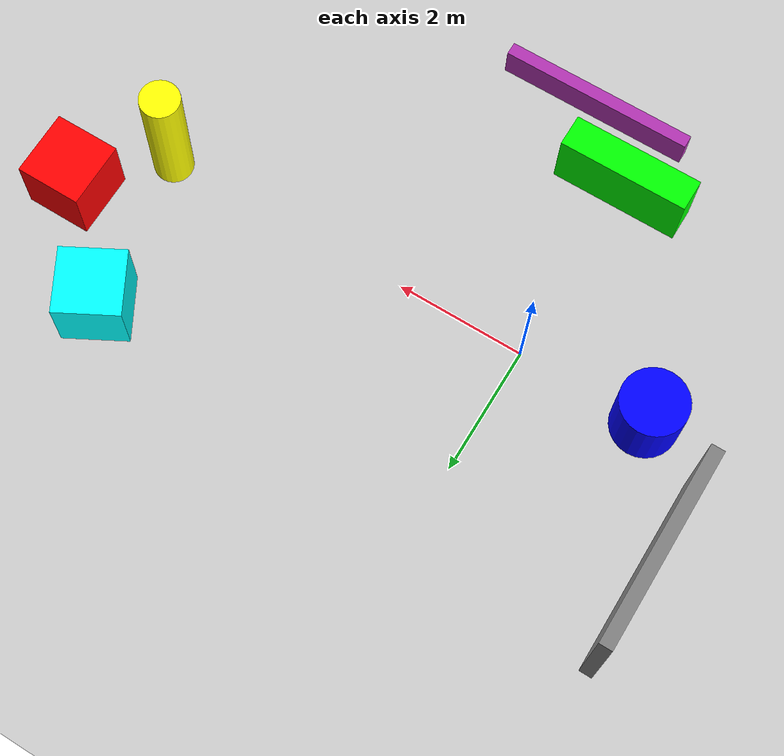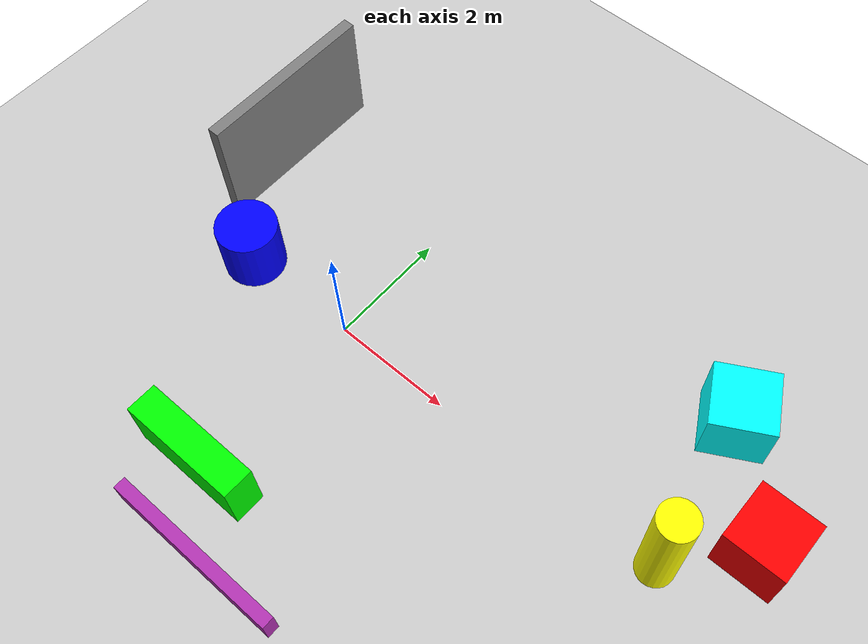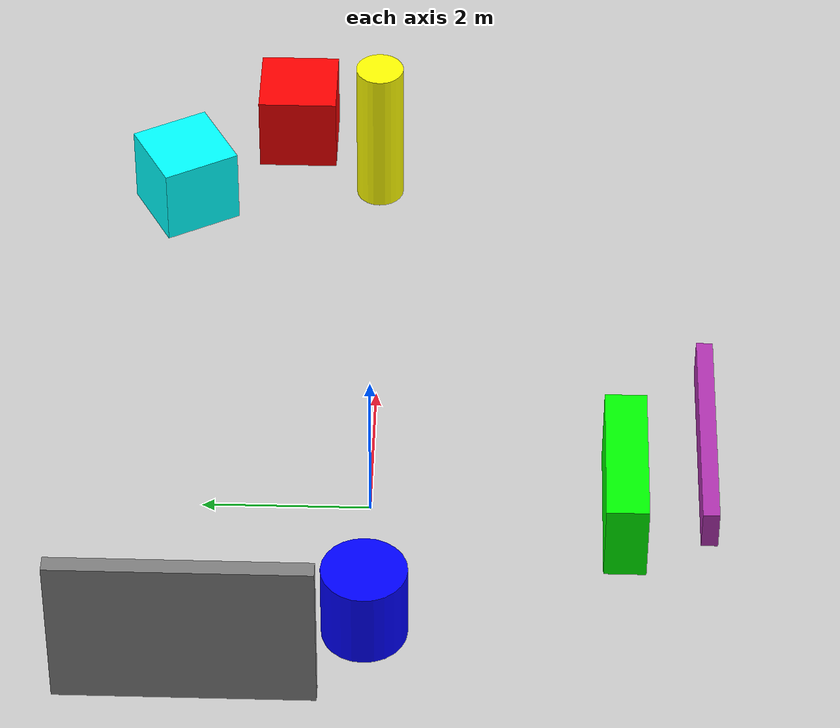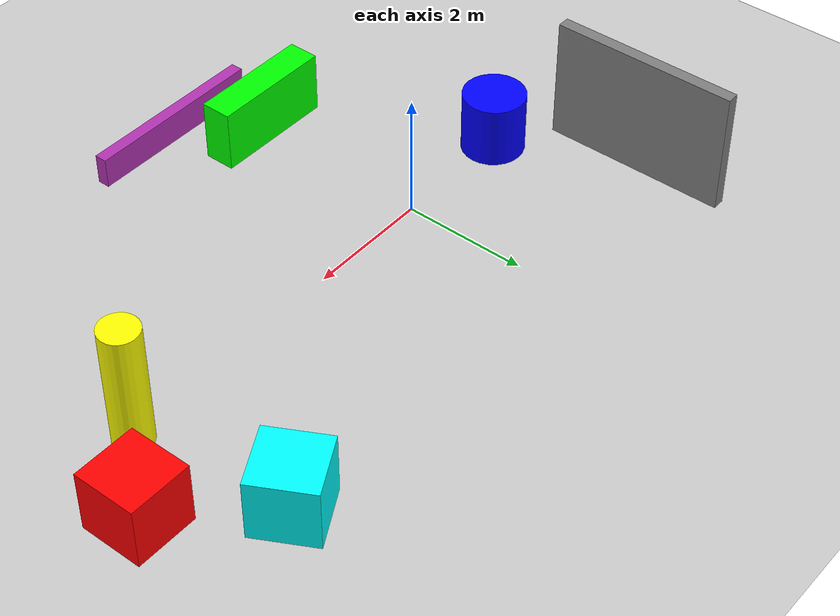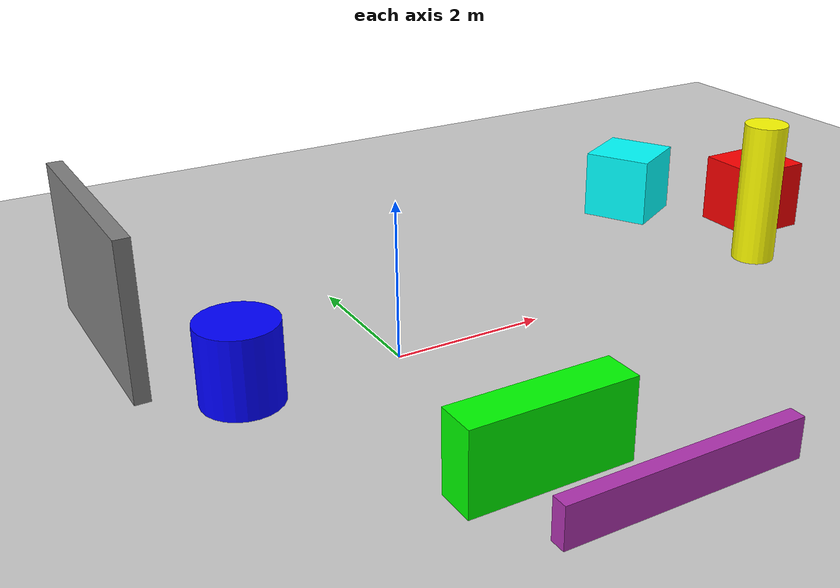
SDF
<sdf version="1.7">
 <world name="empty_world_with_obstacles">
  <light name="sun" type="directional">
   <pose>0 0 10 0 -0 0</pose>
   <diffuse>0.8 0.8 0.8 1</diffuse>
   <specular>0.2 0.2 0.2 1</specular>
   <attenuation>
    <range>1000</range>
    <constant>0.9</constant>
    <linear>0.01</linear>
    <quadratic>0.001</quadratic>
   </attenuation>
   <direction>-0.5 0.1 -0.9</direction>
   <spot><inner_angle>0</inner_angle><outer_angle>0</outer_angle><falloff>0</falloff></spot>
  </light>
  <model name="ground_plane">
   <static>1</static>
   <link name="link">
    <collision name="collision">
     <geometry><plane><normal>0 0 1</normal><size>100 100</size></plane></geometry>
     <surface>
      <contact><collide_bitmask>65535</collide_bitmask></contact>
      <friction><ode><mu>100</mu><mu2>50</mu2></ode></friction>
     </surface>
    </collision>
    <visual name="visual">
     <cast_shadows>0</cast_shadows>
     <geometry><plane><normal>0 0 1</normal><size>100 100</size></plane></geometry>
     <material>
      <script><uri>file://media/materials/scripts/gazebo.material</uri><name>Gazebo/Grey</name></script>
     </material>
    </visual>
   </link>
  </model>
  <model name="box_obstacle_1">
   <pose>4.88379 -0.81871 0 0 -0 0</pose>
   <static>1</static>
   <link name="link">
    <pose>2 2 0.5 0 -0 0</pose>
    <collision name="collision"><geometry><box><size>1 1 1</size></box></geometry></collision>
    <visual name="visual">
     <geometry><box><size>1 1 1</size></box></geometry>
     <material><ambient>1 0 0 1</ambient><diffuse>1 0 0 1</diffuse></material>
    </visual>
   </link>
  </model>
  <model name="cylinder_obstacle_1">
   <static>1</static>
   <link name="link">
    <pose>-2 0 0.5 0 -0 0</pose>
    <collision name="collision">
     <geometry><cylinder><radius>0.5</radius><length>1</length></cylinder></geometry>
    </collision>
    <visual name="visual">
     <geometry><cylinder><radius>0.5</radius><length>1</length></cylinder></geometry>
     <material><ambient>0 0 1 1</ambient><diffuse>0 0 1 1</diffuse></material>
    </visual>
   </link>
  </model>
  <model name="box_obstacle_2">
   <static>1</static>
   <link name="link">
    <pose>0 -3 0.5 0 -0 0</pose>
    <collision name="collision"><geometry><box><size>2 0.5 1</size></box></geometry></collision>
    <visual name="visual">
     <geometry><box><size>2 0.5 1</size></box></geometry>
     <material><ambient>0 1 0 1</ambient><diffuse>0 1 0 1</diffuse></material>
    </visual>
   </link>
  </model>
  <model name="cylinder_obstacle_2">
   <pose>1.90131 0.087773 0 0 -0 0</pose>
   <static>1</static>
   <link name="link">
    <pose>4 0 1 0 -0 0</pose>
    <collision name="collision">
     <geometry><cylinder><radius>0.3</radius><length>2</length></cylinder></geometry>
    </collision>
    <visual name="visual">
     <geometry><cylinder><radius>0.3</radius><length>2</length></cylinder></geometry>
     <material><ambient>1 1 0 1</ambient><diffuse>1 1 0 1</diffuse></material>
    </visual>
   </link>
  </model>
  <model name="wall_box_obstacle">
   <static>1</static>
   <link name="link">
    <pose>-3 2 1 0 -0 0</pose>
    <collision name="collision"><geometry><box><size>0.2 3 2</size></box></geometry></collision>
    <visual name="visual">
     <geometry><box><size>0.2 3 2</size></box></geometry>
     <material><ambient>0.5 0.5 0.5 1</ambient><diffuse>0.5 0.5 0.5 1</diffuse></material>
    </visual>
   </link>
  </model>
  <model name="horizontal_barrier">
   <static>1</static>
   <link name="link">
    <pose>1 -4 0.25 0 -0 0</pose>
    <collision name="collision"><geometry><box><size>3 0.2 0.5</size></box></geometry></collision>
    <visual name="visual">
     <geometry><box><size>3 0.2 0.5</size></box></geometry>
     <material><ambient>0.7 0.2 0.7 1</ambient><diffuse>0.7 0.2 0.7 1</diffuse></material>
    </visual>
   </link>
  </model>
  <model name="tilted_box_obstacle">
   <pose>2.53539 4.56874 0 0 -0 0</pose>
   <static>1</static>
   <link name="link">
    <pose>3 -2 0.5 0 -0 0.5</pose>
    <collision name="collision"><geometry><box><size>1 1 1</size></box></geometry></collision>
    <visual name="visual">
     <geometry><box><size>1 1 1</size></box></geometry>
     <material><ambient>0 1 1 1</ambient><diffuse>0 1 1 1</diffuse></material>
    </visual>
   </link>
  </model>
  <gravity>0 0 -9.8</gravity>
  <magnetic_field>6e-06 2.3e-05 -4.2e-05</magnetic_field>
  <atmosphere type="adiabatic"/>
  <physics type="ode">
   <max_step_size>0.001</max_step_size>
   <real_time_factor>1</real_time_factor>
   <real_time_update_rate>1000</real_time_update_rate>
  </physics>
  <scene><ambient>0.4 0.4 0.4 1</ambient><background>0.7 0.7 0.7 1</background><shadows>1</shadows></scene>
  <audio><device>default</device></audio>
  <spherical_coordinates>
   <surface_model>EARTH_WGS84</surface_model>
   <latitude_deg>0</latitude_deg>
   <longitude_deg>0</longitude_deg>
   <elevation>0</elevation>
   <heading_deg>0</heading_deg>
  </spherical_coordinates>
 </world>
</sdf>
